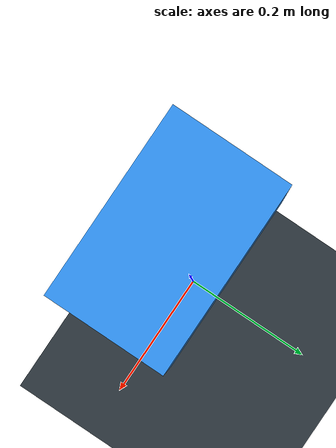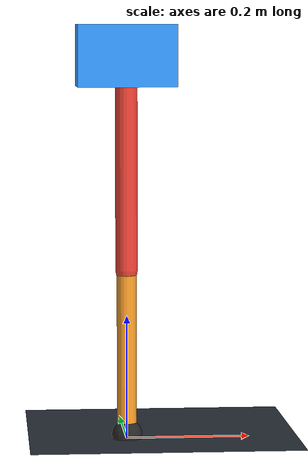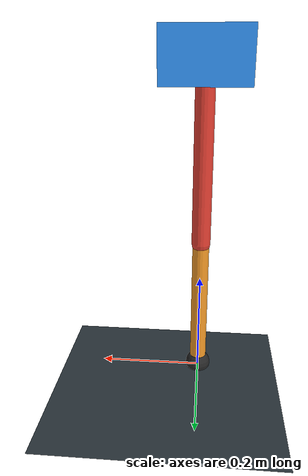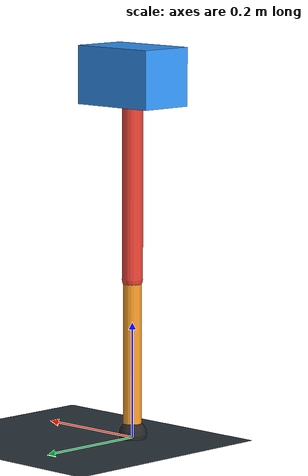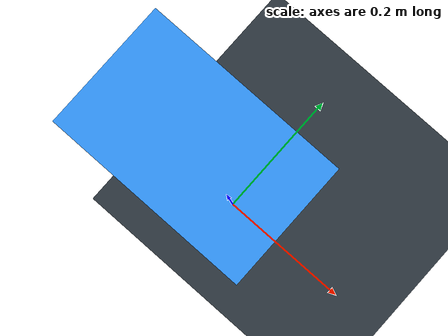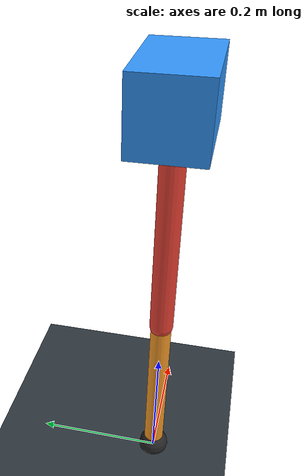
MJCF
<mujoco model="single_axis_two_bar">
  <compiler angle="radian" inertiafromgeom="true"/>
  <option timestep="0.001" integrator="implicitfast" gravity="0 0 -9.81"/>
  <default>
    <joint damping="0.08"/>
    <geom friction="1.2 0.01 0.0001" condim="3"/>
  </default>
  <worldbody>
    <geom name="floor" type="plane" size="5 5 0.1" rgba="0.18 0.22 0.25 1"/>
    <body name="carriage" pos="0 0 0.6233929967310889">
      <joint name="pole_slide" type="slide" axis="0 0 1"/>
      <geom name="payload" type="box" size="0.08 0.05 0.05" mass="2.9646653885165977" rgba="0.2 0.6 1 1"/>
      <body name="thigh" pos="0 0 0">
        <joint name="hip" type="hinge" axis="0 1 0"/>
        <geom name="thigh_link" type="capsule" fromto="0 0 0 0 0 -0.3484237055928636" size="0.018" mass="0.2482564942479802" rgba="0.9 0.25 0.2 1"/>
        <body name="shank" pos="0 0 -0.3484237055928636">
          <joint name="knee" type="hinge" axis="0 1 0"/>
          <geom name="shank_link" type="capsule" fromto="0 0 0 0 0 -0.268476291037125" size="0.016" mass="0.19129290496513857" rgba="0.95 0.6 0.15 1"/>
          <geom name="foot" type="sphere" pos="0 0 -0.268476291037125" size="0.025" mass="0.03" rgba="0.15 0.15 0.15 1"/>
          <site name="toe" pos="0 0 -0.268476291037125" size="0.008"/>
        </body>
      </body>
    </body>
  </worldbody>
  <actuator>
    <motor name="hip_motor" joint="hip" ctrlrange="-24.02210444985609 24.02210444985609"/>
    <motor name="knee_motor" joint="knee" ctrlrange="-152.523314098417 152.523314098417"/>
  </actuator>
</mujoco>
